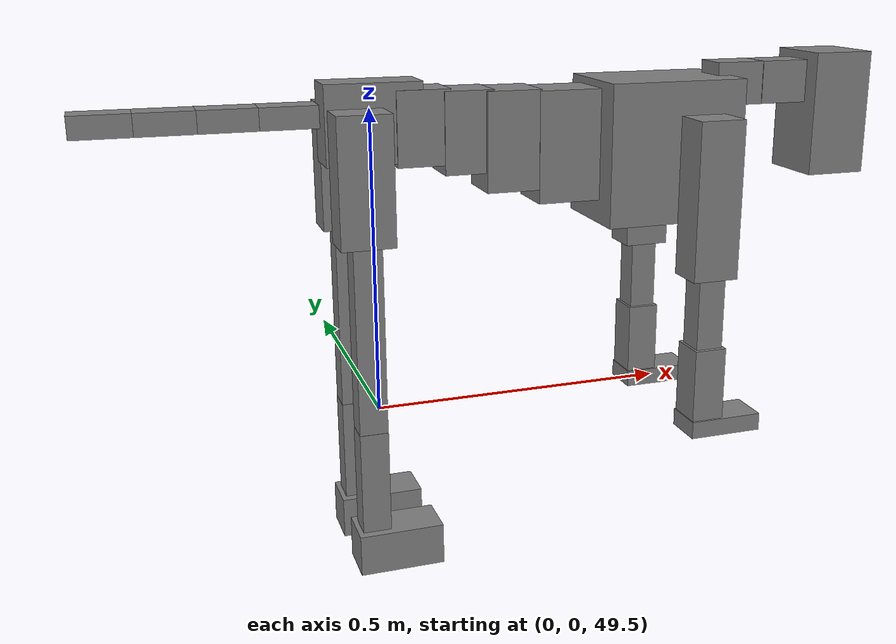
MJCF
<mujoco model="dog">

    <default>
        <joint armature="0.02" stiffness="1" damping="0.2" limited="true"/>
        <geom condim="3" friction="1 0.05 0.05" margin="0.01"/>
        <motor ctrllimited="true" ctrlrange="-1.0 1.0" forcelimited="true" gear="50"/>
    </default>

    <compiler inertiafromgeom="true" angle="radian"/>

    <option timestep="0.016" iterations="50" tolerance="1e-10" solver="Newton" jacobian="dense" cone="pyramidal"/>

    <size nconmax="20000" njmax="60000" nstack="5000000"/>
    <visual>
        <map force="0.1" zfar="30"/>
        <rgba haze="0.15 0.25 0.35 1"/>
        <quality shadowsize="2048"/>
        <global offwidth="800" offheight="800"/>
    </visual>

    <asset>
        <texture type="skybox" builtin="gradient" rgb1="0.3 0.5 0.7" rgb2="0 0 0" width="512" height="512"/>
        <texture name="texplane" type="2d" builtin="checker" rgb1=".2 .3 .4" rgb2=".1 0.15 0.2" width="512" height="512"
                 mark="cross" markrgb=".8 .8 .8"/>
        <texture name="texgeom" type="cube" builtin="flat" mark="cross" width="127" height="1278" rgb1="0.8 0.6 0.4"
                 rgb2="0.8 0.6 0.4" markrgb="1 1 1" random="0.01"/>

        <material name="matplane" reflectance="0.3" texture="texplane" texrepeat="1 1" texuniform="true"/>
        <material name="matgeom" texture="texgeom" texuniform="true" rgba="0.8 0.6 .4 1"/>
    </asset>

    <worldbody>
        <geom name="floor" pos="0 0 0" size="0 0 .25" type="plane" material="matplane" condim="3"/>

        <light directional="false" diffuse=".2 .2 .2" specular="0 0 0" pos="0 0 5" dir="0 0 -1" castshadow="false"/>
        <light mode="targetbodycom" target="torso" directional="false" diffuse=".8 .8 .8" specular="0.3 0.3 0.3"
               pos="0 0 4.0" dir="0 0 -1"/>

        <body name="root" pos="0 0 50">
            <freejoint name="root_1"/>
            <geom type="box" pos="0 0 -0.02" size="0.0774  0.0358  0.063" density="2030"/>

            <body name="spine1" pos="0.054 0 0">
                <joint name="spine1_y" axis="0 1 0" range="0 0.7" limited="true"/>
                <geom type="box" pos="0.02375 0 -0.03" size="0.04375  0.0375  0.05985" density="2030"/>

                <body name="spine2" pos="0.0612 0 0">
                    <joint name="spine2_y" axis="0 1 0" range="-0.15 0.15" limited="true"/>
                    <geom type="box" pos="0.03555  0  -0.04" size="0.04055  0.039  0.06615" density="2030"/>

                    <body name="spine3" pos="0.0730 0 0">
                        <joint name="spine3_y" axis="0 1 0" range="-0.15 0.15" limited="true"/>
                        <geom type="box" pos="0.03555  0  -0.057" size="0.04555  0.0445  0.081" density="2030"/>

                        <body name="spine4" pos="0.0780 0 0">
                            <joint name="spine4_y" axis="0 1 0" range="-0.15 0.15" limited="true"/>
                            <geom type="box" pos="0.05265  0  -0.07" size="0.05265  0.045  0.09135" density="2030"/>

                            <body name="torso" pos="0.1082 0 0">
                                <joint name="torso_y" axis="0 1 0" range="-0.15 0.15" limited="true"/>
                                <geom type="box" pos="0.11925  0  -0.085" size="0.11925  0.085  0.11745"
                                      density="2030"/>

                                <body name="neck1" pos="0.2160  0   0.0180">
                                    <joint name="neck1_y" axis="0 1 0" range="-1.2  -1" limited="true"/>
                                    <geom type="box" pos="0.0423  0  0" size="0.0423  0.03  0.036" density="2325"/>

                                    <body name="neck2" pos="0.0853  0  0">
                                        <joint name="neck2_y" axis="0 1 0" range="0.1  0" limited="true"/>
                                        <geom type="box" pos="0.0423  0  0" size="0.0423  0.03  0.036" density="2325"/>

                                        <body name="head" pos="0.0853  0  0">
                                            <joint name="head_y" axis="0 1 0" range="-0.3  -0.2" limited="true"/>
                                            <geom type="box" pos="0.0531  0  -0.055" size="0.0531  0.06  0.1044"
                                                  density="4030"/>

                                        </body>
                                    </body>
                                </body>

                                <body name="front_shoulder" pos="0.156  0   -0.0480">
                                    <joint name="front_shoulder_y" axis="0 1 0" range="-1 1.5" limited="true"/>
                                    <geom type="box" pos="0 0.13 -0.1048" size="0.0393  0.0336  0.1314" density="1158"/>
                                    <geom type="box" pos="0 -0.13 -0.1048" size="0.0393  0.0336  0.1314"
                                          density="1158"/>

                                    <body name="front_elbow" pos="0  0  -0.2095">
                                        <joint name="front_elbow_y" axis="0 1 0" range="-2 0" limited="true"/>
                                        <geom type="box" pos="0 0.13 -0.0801" size="0.0233  0.0238  0.0801"
                                              density="1081"/>
                                        <geom type="box" pos="0 -0.13 -0.0801" size="0.0233  0.0238  0.0801"
                                              density="1081"/>

                                        <body name="front_wrist" pos="0  0  -0.1602">
                                            <joint name="front_wrist_y" axis="0 1 0" range="-0.2 0" limited="true"/>
                                            <geom type="box" pos="0 0.13 -0.0633" size="0.0278  0.0309  0.0765"
                                                  density="1664"/>
                                            <geom type="box" pos="0 -0.13 -0.0633" size="0.0278  0.0309  0.0765"
                                                  density="1664"/>

                                            <body name="front_finger_end" pos="0  0  -0.1267">
                                                <joint name="front_finger_y" axis="0 1 0" range="-0.4 1"
                                                       limited="true"/>
                                                <geom type="box" pos="0.0346  0.13  0.0002"
                                                      size="0.0635  0.0346  0.0148" density="1515"/>
                                                <geom type="box" pos="0.0346  -0.13  0.0002"
                                                      size="0.0635  0.0346  0.0148" density="1515"/>

                                            </body>

                                        </body>
                                    </body>
                                </body>

                            </body>
                        </body>
                    </body>
                </body>
            </body>

            <body name="back_hip" pos="-0.03 0 -0.018">
                <joint name="back_hip_y" axis="0 1 0" range="-1.5 0.3" limited="true"/>
                <geom type="box" pos="0 0.07 -0.0793" size="0.0431  0.0338  0.1021" density="1154"/>
                <geom type="box" pos="0 -0.07 -0.0793" size="0.0431  0.0338  0.1021" density="1154"/>

                <body name="back_knee" pos="0  0  -0.1586">
                    <joint name="back_knee_y" axis="0 1 0" range="0 2.8" limited="true"/>
                    <geom type="box" pos="0 0.07 -0.1700" size="0.0231  0.0228  0.1855" density="1227"/>
                    <geom type="box" pos="0 -0.07 -0.1700" size="0.0231  0.0228  0.1855" density="1227"/>

                    <body name="back_ankle" pos="0  0  -0.3400">
                        <joint name="back_ankle_y" axis="0 1 0" range="-2.2 0" limited="true"/>
                        <geom type="box" pos="0 0.07 -0.0873" size="0.0233  0.0233  0.0985" density="1284"/>
                        <geom type="box" pos="0 -0.07 -0.0873" size="0.0233  0.0233  0.0985" density="1284"/>

                        <body name="back_toe_end" pos="0  0  -0.1745">
                            <joint name="back_toe_y" axis="0 1 0" range="-0.4 1" limited="true"/>
                            <geom type="box" pos="0.0380  0.07  -0.0192" size="0.0696  0.0380  0.0342" density="1515"/>
                            <geom type="box" pos="0.0380  -0.07  -0.0192" size="0.0696  0.0380  0.0342" density="1515"/>

                        </body>
                    </body>
                </body>
            </body>

            <body name="tail1" pos="-0.074 0 -0.006">
                <joint name="tail1_y" axis="0 1 0" range="-0.2 0.2" limited="true"/>
                <geom type="box" pos="-0.0536  0  0" size="0.045  0.025  0.0175" density="1587"/>

                <body name="tail2" pos="-0.09 0 0">
                    <joint name="tail2_y" axis="0 1 0" range="-0.2 0.2" limited="true"/>
                    <geom type="box" pos="-0.0536  0  0" size="0.045  0.025  0.0175" density="1587"/>

                    <body name="tail3" pos="-0.09 0 0">
                        <joint name="tail3_y" axis="0 1 0" range="-0.2 0.2" limited="true"/>
                        <geom type="box" pos="-0.0536  0  0" size="0.045  0.025  0.0175" density="1587"/>

                        <body name="tail4" pos="-0.09 0 0">
                            <joint name="tail4_y" axis="0 1 0" range="-0.2 0.2" limited="true"/>
                            <geom type="box" pos="-0.0536  0  0" size="0.045  0.025  0.0175" density="1587"/>

                        </body>
                    </body>
                </body>
            </body>
        </body>
    </worldbody>

    <actuator>
        <motor joint="spine1_y" forcerange="-150 150     "/>
        <motor joint="spine2_y" forcerange="-150 150     "/>
        <motor joint="spine3_y" forcerange="-150 150     "/>
        <motor joint="spine4_y" forcerange="-150 150     "/>
        <motor joint="torso_y" forcerange="-150 150     "/>
        <motor joint="neck1_y" forcerange="-100 100       "/>
        <motor joint="neck2_y" forcerange="-100 100       "/>
        <motor joint="head_y" forcerange="-150 150       "/>
        <motor joint="front_shoulder_y" forcerange="-171.90 151.84"/>
        <motor joint="front_elbow_y" forcerange="-143.75 129.43"/>
        <motor joint="front_wrist_y" forcerange="-132.34 115.21"/>
        <motor joint="front_finger_y" forcerange="-97.35 47.41"/>
        <motor joint="back_hip_y" forcerange="-257.60 393.16"/>
        <motor joint="back_knee_y" forcerange="-300.85 230.85"/>
        <motor joint="back_angle_y" forcerange="-178.74 93.85"/>
        <motor joint="back_toe_y" forcerange="-124.10 99.51"/>
        <motor joint="tail1_y" forcerange="-50 50     "/>
        <motor joint="tail2_y" forcerange="-50 50     "/>
        <motor joint="tail3_y" forcerange="-50 50     "/>
        <motor joint="tail4_y" forcerange="-50 50     "/>
    </actuator>
</mujoco>
